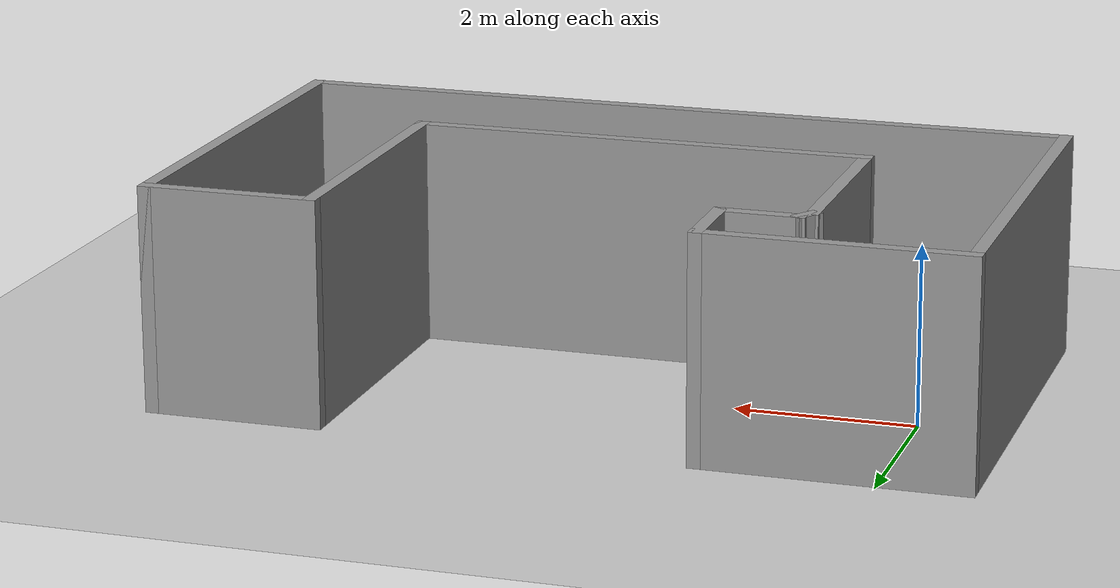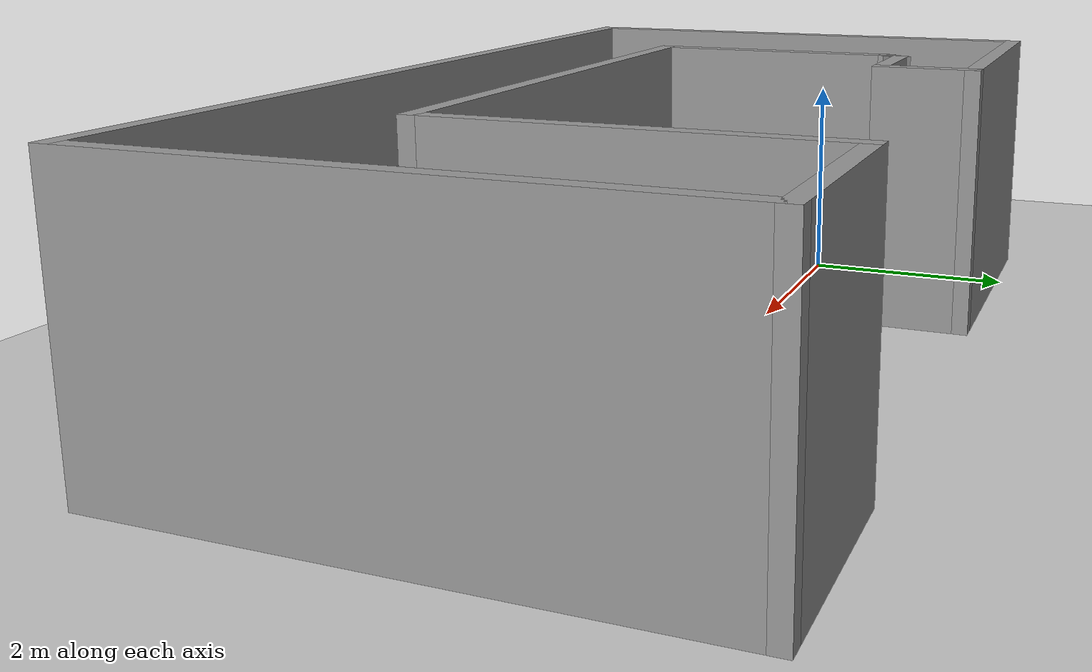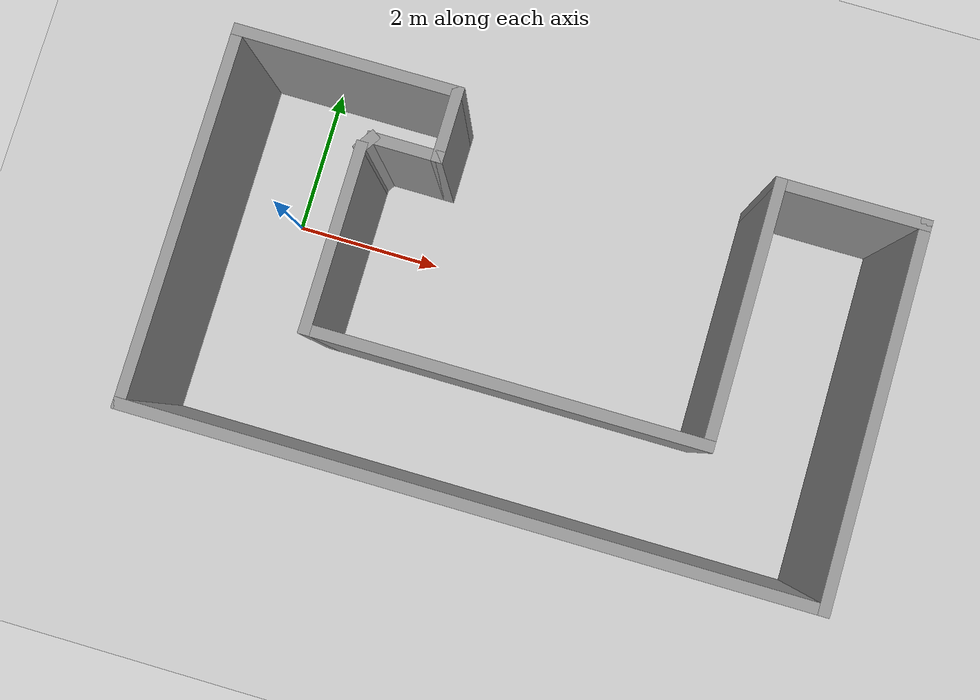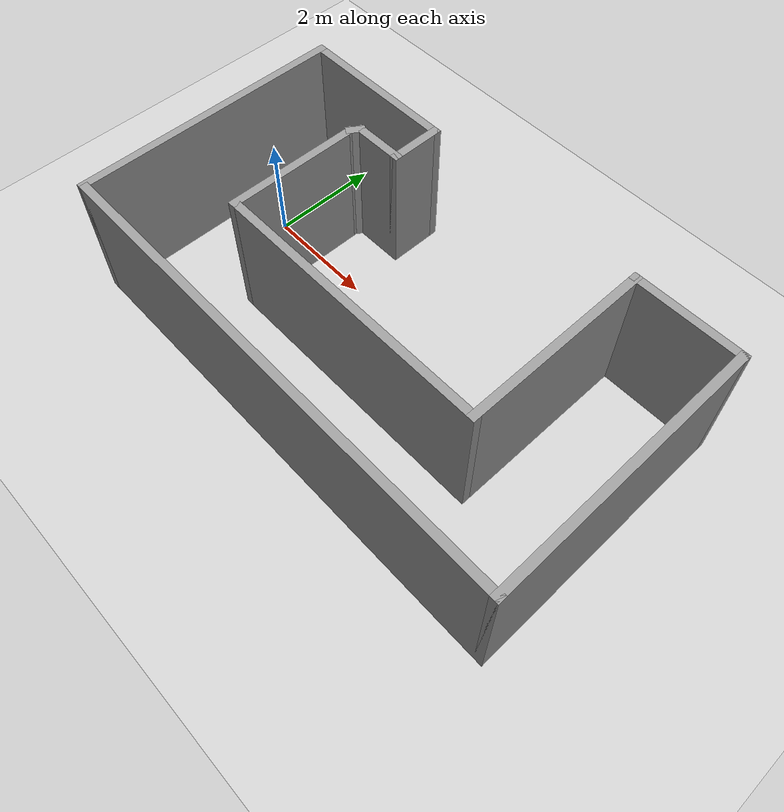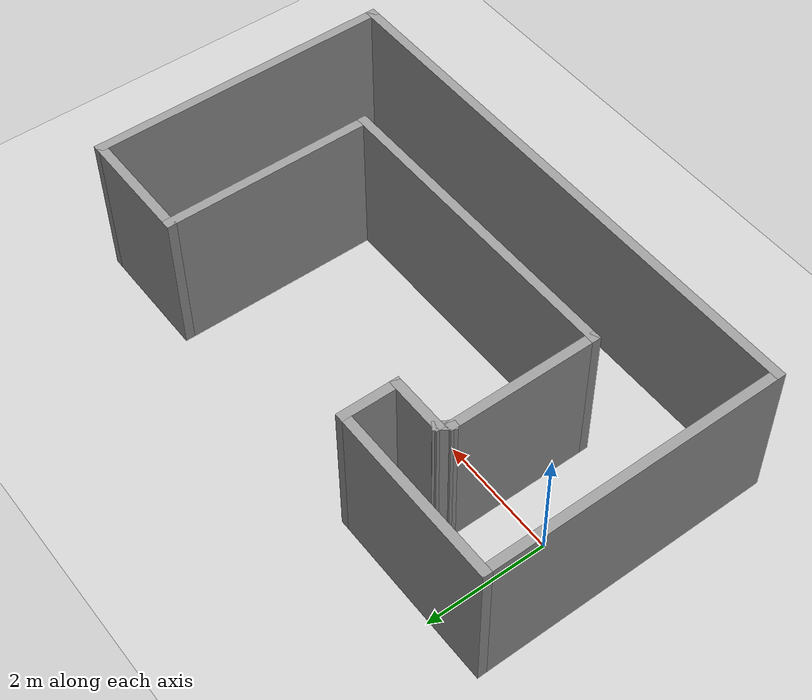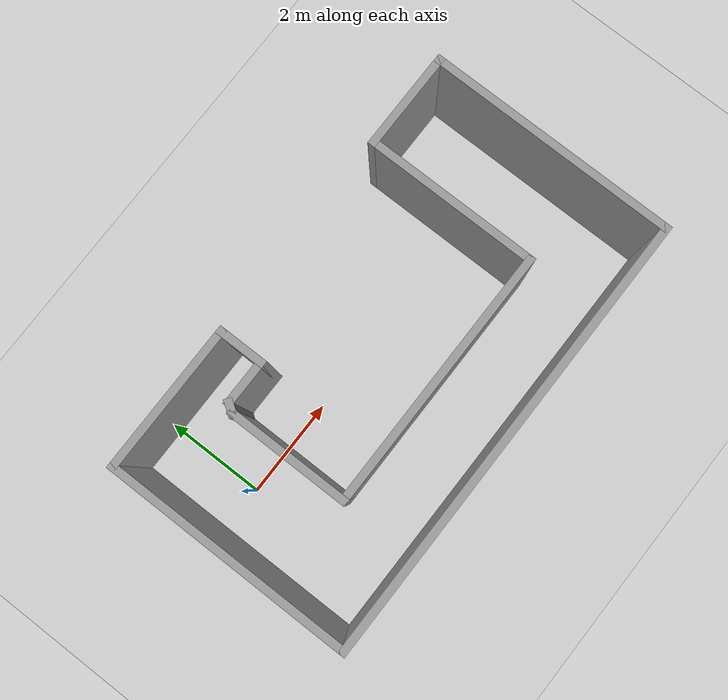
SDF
<sdf version="1.6">
 <world name="default">
  <light name="sun" type="directional">
   <pose>0 0 10 0 -0 0</pose>
   <diffuse>0.8 0.8 0.8 1</diffuse>
   <specular>0.2 0.2 0.2 1</specular>
   <attenuation>
    <range>1000</range>
    <constant>0.9</constant>
    <linear>0.01</linear>
    <quadratic>0.001</quadratic>
   </attenuation>
   <direction>-0.5 0.1 -0.9</direction>
  </light>
  <model name="ground_plane">
   <static>1</static>
   <link name="link">
    <collision name="collision">
     <geometry><plane><normal>0 0 1</normal><size>100 100</size></plane></geometry>
     <surface>
      <contact><collide_bitmask>65535</collide_bitmask></contact>
      <friction><ode><mu>100</mu><mu2>50</mu2></ode></friction>
     </surface>
    </collision>
    <visual name="visual">
     <cast_shadows>0</cast_shadows>
     <geometry><plane><normal>0 0 1</normal><size>100 100</size></plane></geometry>
     <material>
      <script><uri>file://media/materials/scripts/gazebo.material</uri><name>Gazebo/Grey</name></script>
     </material>
    </visual>
   </link>
  </model>
  <gravity>0 0 -9.8</gravity>
  <magnetic_field>6e-06 2.3e-05 -4.2e-05</magnetic_field>
  <atmosphere type="adiabatic"/>
  <physics name="default_physics" default="0" type="ode">
   <max_step_size>0.001</max_step_size>
   <real_time_factor>1</real_time_factor>
   <real_time_update_rate>1000</real_time_update_rate>
  </physics>
  <scene><ambient>0.4 0.4 0.4 1</ambient><background>0.7 0.7 0.7 1</background><shadows>1</shadows></scene>
  <spherical_coordinates>
   <surface_model>EARTH_WGS84</surface_model>
   <latitude_deg>0</latitude_deg>
   <longitude_deg>0</longitude_deg>
   <elevation>0</elevation>
   <heading_deg>0</heading_deg>
  </spherical_coordinates>
  <model name="b1">
   <pose>3.47792 -0.540588 0 0 -0 0</pose>
   <link name="Wall_0">
    <collision name="Wall_0_Collision">
     <geometry><box><size>1 0.15 2.5</size></box></geometry>
     <pose>0 0 1.25 0 -0 0</pose>
    </collision>
    <visual name="Wall_0_Visual">
     <pose>0 0 1.25 0 -0 0</pose>
     <geometry><box><size>1 0.15 2.5</size></box></geometry>
     <material>
      <script><uri>file://media/materials/scripts/gazebo.material</uri><name>Gazebo/Grey</name></script>
      <ambient>1 1 1 1</ambient>
     </material>
     <meta><layer>0</layer></meta>
    </visual>
    <pose>-2 1.575 0 0 -0 0</pose>
   </link>
   <link name="Wall_1">
    <collision name="Wall_1_Collision">
     <geometry><box><size>1 0.15 2.5</size></box></geometry>
     <pose>0 0 1.25 0 -0 0</pose>
    </collision>
    <visual name="Wall_1_Visual">
     <pose>0 0 1.25 0 -0 0</pose>
     <geometry><box><size>1 0.15 2.5</size></box></geometry>
     <material>
      <script><uri>file://media/materials/scripts/gazebo.material</uri><name>Gazebo/Grey</name></script>
      <ambient>1 1 1 1</ambient>
     </material>
     <meta><layer>0</layer></meta>
    </visual>
    <pose>-1.575 2 0 0 -0 1.5708</pose>
   </link>
   <link name="Wall_10">
    <collision name="Wall_10_Collision">
     <geometry><box><size>5.25 0.15 2.5</size></box></geometry>
     <pose>0 0 1.25 0 -0 0</pose>
    </collision>
    <visual name="Wall_10_Visual">
     <pose>0 0 1.25 0 -0 0</pose>
     <geometry><box><size>5.25 0.15 2.5</size></box></geometry>
     <material>
      <script><uri>file://media/materials/scripts/gazebo.material</uri><name>Gazebo/Grey</name></script>
      <ambient>1 1 1 1</ambient>
     </material>
     <meta><layer>0</layer></meta>
    </visual>
    <pose>0.025 -0.925 0 0 -0 3.14159</pose>
   </link>
   <link name="Wall_11">
    <collision name="Wall_11_Collision">
     <geometry><box><size>2.5 0.15 2.5</size></box></geometry>
     <pose>0 0 1.25 0 -0 0</pose>
    </collision>
    <visual name="Wall_11_Visual">
     <pose>0 0 1.25 0 -0 0</pose>
     <geometry><box><size>2.5 0.15 2.5</size></box></geometry>
     <material>
      <script><uri>file://media/materials/scripts/gazebo.material</uri><name>Gazebo/Grey</name></script>
      <ambient>1 1 1 1</ambient>
     </material>
     <meta><layer>0</layer></meta>
    </visual>
    <pose>-2.525 0.25 0 0 -0 1.5708</pose>
   </link>
   <link name="Wall_12">
    <collision name="Wall_12_Collision">
     <geometry><box><size>0.15 0.15 2.5</size></box></geometry>
     <pose>0 0 1.25 0 -0 0</pose>
    </collision>
    <visual name="Wall_12_Visual">
     <pose>0 0 1.25 0 -0 0</pose>
     <geometry><box><size>0.15 0.15 2.5</size></box></geometry>
     <material>
      <script><uri>file://media/materials/scripts/gazebo.material</uri><name>Gazebo/Grey</name></script>
      <ambient>1 1 1 1</ambient>
     </material>
     <meta><layer>0</layer></meta>
    </visual>
    <pose>-2.525 1.425 0 0 -0 0</pose>
   </link>
   <link name="Wall_13">
    <collision name="Wall_13_Collision">
     <geometry><box><size>0.330278 0.15 2.5</size></box></geometry>
     <pose>0 0 1.25 0 -0 0</pose>
    </collision>
    <visual name="Wall_13_Visual">
     <pose>0 0 1.25 0 -0 0</pose>
     <geometry><box><size>0.330278 0.15 2.5</size></box></geometry>
     <material>
      <script><uri>file://media/materials/scripts/gazebo.material</uri><name>Gazebo/Grey</name></script>
      <ambient>1 1 1 1</ambient>
     </material>
     <meta><layer>0</layer></meta>
    </visual>
    <pose>-2.475 1.5 0 0 -0 0.982794</pose>
   </link>
   <link name="Wall_2">
    <collision name="Wall_2_Collision">
     <geometry><box><size>3 0.15 2.5</size></box></geometry>
     <pose>0 0 1.25 0 -0 0</pose>
    </collision>
    <visual name="Wall_2_Visual">
     <pose>0 0 1.25 0 -0 0</pose>
     <geometry><box><size>3 0.15 2.5</size></box></geometry>
     <material>
      <script><uri>file://media/materials/scripts/gazebo.material</uri><name>Gazebo/Grey</name></script>
      <ambient>1 1 1 1</ambient>
     </material>
     <meta><layer>0</layer></meta>
    </visual>
    <pose>-3 2.425 0 0 -0 3.14159</pose>
   </link>
   <link name="Wall_5">
    <collision name="Wall_5_Collision">
     <geometry><box><size>5 0.15 2.5</size></box></geometry>
     <pose>0 0 1.25 0 -0 0</pose>
    </collision>
    <visual name="Wall_5_Visual">
     <pose>0 0 1.25 0 -0 0</pose>
     <geometry><box><size>5 0.15 2.5</size></box></geometry>
     <material>
      <script><uri>file://media/materials/scripts/gazebo.material</uri><name>Gazebo/Grey</name></script>
      <ambient>1 1 1 1</ambient>
     </material>
     <meta><layer>0</layer></meta>
    </visual>
    <pose>-4.425 0 0 0 0 -1.5708</pose>
   </link>
   <link name="Wall_6">
    <collision name="Wall_6_Collision">
     <geometry><box><size>9 0.15 2.5</size></box></geometry>
     <pose>0 0 1.25 0 -0 0</pose>
    </collision>
    <visual name="Wall_6_Visual">
     <pose>0 0 1.25 0 -0 0</pose>
     <geometry><box><size>9 0.15 2.5</size></box></geometry>
     <material>
      <script><uri>file://media/materials/scripts/gazebo.material</uri><name>Gazebo/Grey</name></script>
      <ambient>1 1 1 1</ambient>
     </material>
     <meta><layer>0</layer></meta>
    </visual>
    <pose>0 -2.425 0 0 -0 0</pose>
   </link>
   <link name="Wall_7">
    <collision name="Wall_7_Collision">
     <geometry><box><size>5 0.15 2.5</size></box></geometry>
     <pose>0 0 1.25 0 -0 0</pose>
    </collision>
    <visual name="Wall_7_Visual">
     <pose>0 0 1.25 0 -0 0</pose>
     <geometry><box><size>5 0.15 2.5</size></box></geometry>
     <material>
      <script><uri>file://media/materials/scripts/gazebo.material</uri><name>Gazebo/Grey</name></script>
      <ambient>1 1 1 1</ambient>
     </material>
     <meta><layer>0</layer></meta>
    </visual>
    <pose>4.425 0 0 0 -0 1.5708</pose>
   </link>
   <link name="Wall_8">
    <collision name="Wall_8_Collision">
     <geometry><box><size>2 0.15 2.5</size></box></geometry>
     <pose>0 0 1.25 0 -0 0</pose>
    </collision>
    <visual name="Wall_8_Visual">
     <pose>0 0 1.25 0 -0 0</pose>
     <geometry><box><size>2 0.15 2.5</size></box></geometry>
     <material>
      <script><uri>file://media/materials/scripts/gazebo.material</uri><name>Gazebo/Grey</name></script>
      <ambient>1 1 1 1</ambient>
     </material>
     <meta><layer>0</layer></meta>
    </visual>
    <pose>3.5 2.425 0 0 -0 3.14159</pose>
   </link>
   <link name="Wall_9">
    <collision name="Wall_9_Collision">
     <geometry><box><size>3.5 0.15 2.5</size></box></geometry>
     <pose>0 0 1.25 0 -0 0</pose>
    </collision>
    <visual name="Wall_9_Visual">
     <pose>0 0 1.25 0 -0 0</pose>
     <geometry><box><size>3.5 0.15 2.5</size></box></geometry>
     <material>
      <script><uri>file://media/materials/scripts/gazebo.material</uri><name>Gazebo/Grey</name></script>
      <ambient>1 1 1 1</ambient>
     </material>
     <meta><layer>0</layer></meta>
    </visual>
    <pose>2.575 0.75 0 0 0 -1.5708</pose>
   </link>
   <static>1</static>
  </model>
 </world>
</sdf>
